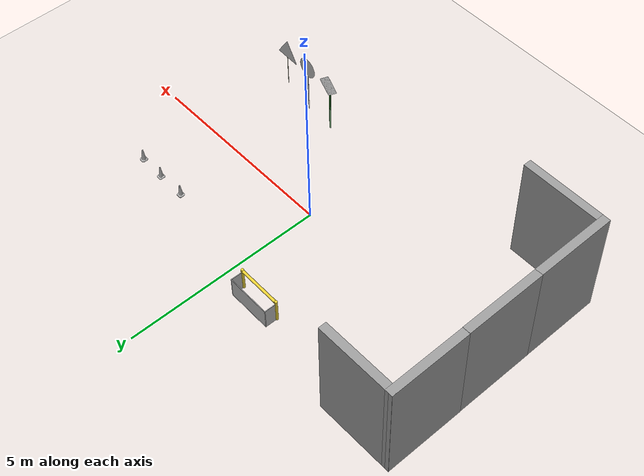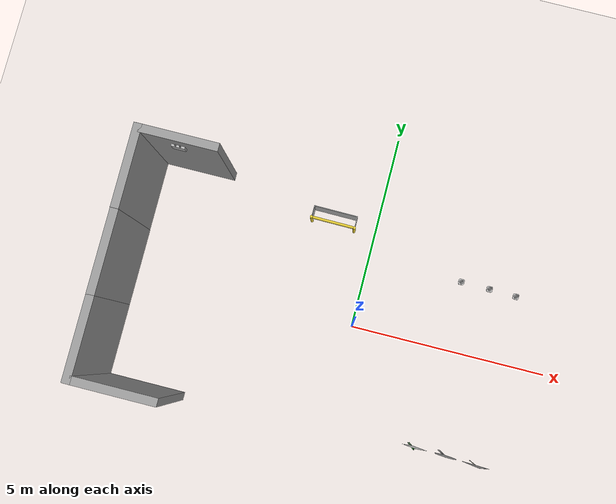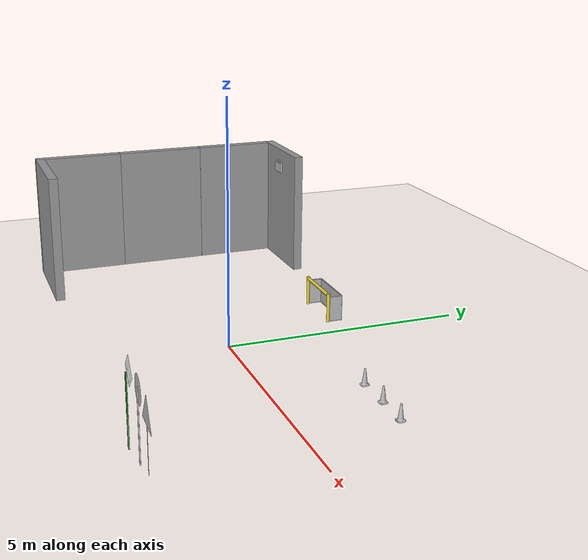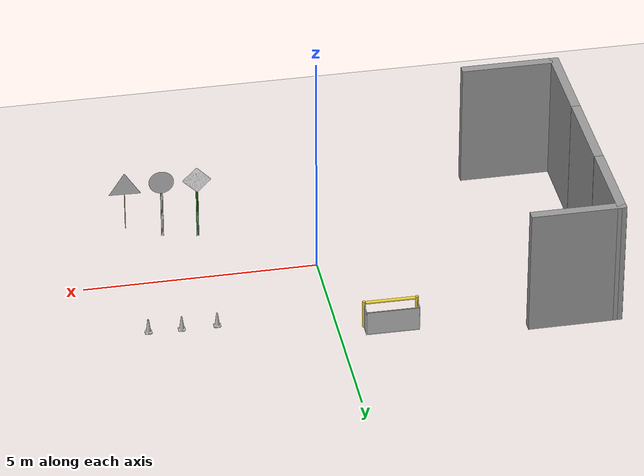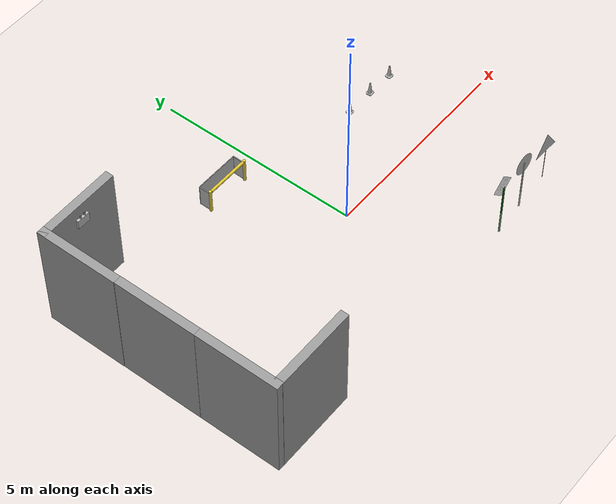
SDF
<sdf version="1.7">
 <world name="world">
  <model name="ground_plane">
   <static>1</static>
   <link name="link">
    <collision name="collision">
     <geometry><plane><normal>0 0 1</normal><size>100 100</size></plane></geometry>
     <surface><friction><ode><mu>100</mu><mu2>50</mu2></ode></friction></surface>
    </collision>
    <visual name="visual">
     <cast_shadows>0</cast_shadows>
     <geometry><plane><normal>0 0 1</normal><size>100 100</size></plane></geometry>
     <material>
      <script><uri>file://media/materials/scripts/gazebo.material</uri><name>Gazebo/Grey</name></script>
     </material>
    </visual>
   </link>
  </model>
  <light name="sun" type="directional">
   <pose>0 0 10 0 -0 0</pose>
   <diffuse>0.8 0.8 0.8 1</diffuse>
   <specular>0.2 0.2 0.2 1</specular>
   <attenuation>
    <range>1000</range>
    <constant>0.9</constant>
    <linear>0.01</linear>
    <quadratic>0.001</quadratic>
   </attenuation>
   <direction>-0.5 0.1 -0.9</direction>
   <spot><inner_angle>0</inner_angle><outer_angle>0</outer_angle><falloff>0</falloff></spot>
  </light>
  <gravity>0 0 -9.8</gravity>
  <magnetic_field>6e-06 2.3e-05 -4.2e-05</magnetic_field>
  <atmosphere type="adiabatic"/>
  <physics type="ode">
   <max_step_size>0.001</max_step_size>
   <real_time_factor>1</real_time_factor>
   <real_time_update_rate>1000</real_time_update_rate>
  </physics>
  <scene><ambient>0.4 0.4 0.4 1</ambient><background>0.7 0.7 0.7 1</background><shadows>1</shadows></scene>
  <spherical_coordinates>
   <surface_model>EARTH_WGS84</surface_model>
   <latitude_deg>0</latitude_deg>
   <longitude_deg>0</longitude_deg>
   <elevation>0</elevation>
   <heading_deg>0</heading_deg>
  </spherical_coordinates>
  <model name="RoboCup 2014 SPL Goal_1">
   <static>1</static>
   <link name="left_post">
    <pose>0 0.56 0.315 0 -0 0</pose>
    <collision name="collision">
     <geometry><cylinder><radius>0.035</radius><length>0.63</length></cylinder></geometry>
    </collision>
    <visual name="visual">
     <geometry><cylinder><radius>0.035</radius><length>0.63</length></cylinder></geometry>
     <material>
      <script><uri>file://media/materials/scripts/gazebo.material</uri><name>Gazebo/ZincYellow</name></script>
     </material>
    </visual>
   </link>
   <link name="left_support_horiz_lower">
    <pose>0.168 0.56 0.007 0 -0 0</pose>
    <collision name="collision"><geometry><box><size>0.266 0.014 0.014</size></box></geometry></collision>
    <visual name="visual">
     <geometry><box><size>0.266 0.014 0.014</size></box></geometry>
     <material>
      <script><uri>file://media/materials/scripts/gazebo.material</uri><name>Gazebo/White</name></script>
     </material>
    </visual>
   </link>
   <link name="left_support_horiz_upper">
    <pose>0.168 0.56 0.553 0 -0 0</pose>
    <collision name="collision"><geometry><box><size>0.266 0.014 0.014</size></box></geometry></collision>
    <visual name="visual">
     <geometry><box><size>0.266 0.014 0.014</size></box></geometry>
     <material>
      <script><uri>file://media/materials/scripts/gazebo.material</uri><name>Gazebo/White</name></script>
     </material>
    </visual>
   </link>
   <link name="left_support_vertical">
    <pose>0.308 0.56 0.28 3.14159 1.57079 3.14159</pose>
    <collision name="collision"><geometry><box><size>0.56 0.014 0.014</size></box></geometry></collision>
    <visual name="visual">
     <geometry><box><size>0.56 0.014 0.014</size></box></geometry>
     <material>
      <script><uri>file://media/materials/scripts/gazebo.material</uri><name>Gazebo/White</name></script>
     </material>
    </visual>
   </link>
   <link name="right_support_horiz_lower">
    <pose>0.168 -0.56 0.007 0 -0 0</pose>
    <collision name="collision"><geometry><box><size>0.266 0.014 0.014</size></box></geometry></collision>
    <visual name="visual">
     <geometry><box><size>0.266 0.014 0.014</size></box></geometry>
     <material>
      <script><uri>file://media/materials/scripts/gazebo.material</uri><name>Gazebo/White</name></script>
     </material>
    </visual>
   </link>
   <link name="right_support_horiz_upper">
    <pose>0.168 -0.56 0.553 0 -0 0</pose>
    <collision name="collision"><geometry><box><size>0.266 0.014 0.014</size></box></geometry></collision>
    <visual name="visual">
     <geometry><box><size>0.266 0.014 0.014</size></box></geometry>
     <material>
      <script><uri>file://media/materials/scripts/gazebo.material</uri><name>Gazebo/White</name></script>
     </material>
    </visual>
   </link>
   <link name="right_support_vertical">
    <pose>0.308 -0.56 0.28 3.14159 1.57079 3.14159</pose>
    <collision name="collision"><geometry><box><size>0.56 0.014 0.014</size></box></geometry></collision>
    <visual name="visual">
     <geometry><box><size>0.56 0.014 0.014</size></box></geometry>
     <material>
      <script><uri>file://media/materials/scripts/gazebo.material</uri><name>Gazebo/White</name></script>
     </material>
    </visual>
   </link>
   <link name="center_support_horiz_lower">
    <pose>0.308 0 0.007 3.14159 1.57079 3.14159</pose>
    <collision name="collision"><geometry><box><size>0.014 1.106 0.014</size></box></geometry></collision>
    <visual name="visual">
     <geometry><box><size>0.014 1.106 0.014</size></box></geometry>
     <material>
      <script><uri>file://media/materials/scripts/gazebo.material</uri><name>Gazebo/White</name></script>
     </material>
    </visual>
   </link>
   <link name="center_support_horiz_upper">
    <pose>0.308 0 0.553 3.14159 1.57079 3.14159</pose>
    <collision name="collision"><geometry><box><size>0.014 1.106 0.014</size></box></geometry></collision>
    <visual name="visual">
     <geometry><box><size>0.014 1.106 0.014</size></box></geometry>
     <material>
      <script><uri>file://media/materials/scripts/gazebo.material</uri><name>Gazebo/White</name></script>
     </material>
    </visual>
   </link>
   <link name="right_post">
    <pose>0 -0.56 0.315 0 -0 0</pose>
    <collision name="collision">
     <geometry><cylinder><radius>0.035</radius><length>0.63</length></cylinder></geometry>
    </collision>
    <visual name="visual">
     <geometry><cylinder><radius>0.035</radius><length>0.63</length></cylinder></geometry>
     <material>
      <script><uri>file://media/materials/scripts/gazebo.material</uri><name>Gazebo/ZincYellow</name></script>
     </material>
    </visual>
   </link>
   <link name="crossbar">
    <pose>0 0 0.595 1.57 1.57 0</pose>
    <collision name="collision">
     <geometry><cylinder><radius>0.035</radius><length>1.05</length></cylinder></geometry>
    </collision>
    <visual name="visual">
     <geometry><cylinder><radius>0.035</radius><length>1.05</length></cylinder></geometry>
     <material>
      <script><uri>file://media/materials/scripts/gazebo.material</uri><name>Gazebo/ZincYellow</name></script>
     </material>
    </visual>
   </link>
   <link name="center_net">
    <pose>0.308 0 0.28 0 -0 0</pose>
    <collision name="collision"><geometry><box><size>0.007 1.12 0.56</size></box></geometry></collision>
    <visual name="visual">
     <geometry><box><size>0.007 1.12 0.56</size></box></geometry>
     <material>
      <script>
       <uri>model://robocup09_spl_field/materials/scripts/</uri>
       <uri>model://robocup09_spl_field/materials/textures/</uri>
       <name>RoboCup/Net</name>
      </script>
     </material>
    </visual>
   </link>
   <link name="left_net">
    <pose>0.168 0.56 0.28 0 -0 0</pose>
    <collision name="collision"><geometry><box><size>0.266 0.007 0.532</size></box></geometry></collision>
    <visual name="visual">
     <geometry><box><size>0.266 0.007 0.532</size></box></geometry>
     <material>
      <script>
       <uri>model://robocup09_spl_field/materials/scripts/</uri>
       <uri>model://robocup09_spl_field/materials/textures/</uri>
       <name>RoboCup/Net</name>
      </script>
     </material>
    </visual>
   </link>
   <link name="right_net">
    <pose>0.168 -0.56 0.28 0 -0 0</pose>
    <collision name="collision"><geometry><box><size>0.266 0.007 0.532</size></box></geometry></collision>
    <visual name="visual">
     <geometry><box><size>0.266 0.007 0.532</size></box></geometry>
     <material>
      <script>
       <uri>model://robocup09_spl_field/materials/scripts/</uri>
       <uri>model://robocup09_spl_field/materials/textures/</uri>
       <name>RoboCup/Net</name>
      </script>
     </material>
    </visual>
   </link>
   <pose>-1.11191 2.39479 0 0 -0 1.56109</pose>
  </model>
  <model name="grey_wall_short">
   <link name="link">
    <pose>0 0 1.4 0 -0 0</pose>
    <inertial>
     <mass>1</mass>
     <inertia><ixx>1</ixx><ixy>0</ixy><ixz>0</ixz><iyy>1</iyy><iyz>0</iyz><izz>1</izz></inertia>
    </inertial>
    <visual name="visual">
     <cast_shadows>0</cast_shadows>
     <geometry><box><size>2 0.2 2.8</size></box></geometry>
     <material>
      <script>
       <uri>model://grey_wall/materials/scripts</uri>
       <uri>model://grey_wall/materials/textures</uri>
       <name>vrc/grey_wall</name>
      </script>
      <shader type="pixel"><normal_map>__default__</normal_map></shader>
      <ambient>1 1 1 1</ambient>
      <diffuse>1 1 1 1</diffuse>
      <specular>0 0 0 1</specular>
      <emissive>0 0 0 1</emissive>
     </material>
    </visual>
    <collision name="collision">
     <geometry><box><size>7.5 0.2 2.8</size></box></geometry>
     <surface>
      <friction>
       <ode><mu>1</mu><mu2>1</mu2><fdir1>0 0 0</fdir1><slip1>0</slip1><slip2>0</slip2></ode>
       <torsional>
        <coefficient>1</coefficient>
        <patch_radius>0</patch_radius>
        <surface_radius>0</surface_radius>
        <use_patch_radius>1</use_patch_radius>
        <ode><slip>0</slip></ode>
       </torsional>
      </friction>
      <bounce><restitution_coefficient>0</restitution_coefficient><threshold>1e+06</threshold></bounce>
      <contact>
       <collide_without_contact>0</collide_without_contact>
       <collide_without_contact_bitmask>1</collide_without_contact_bitmask>
       <collide_bitmask>1</collide_bitmask>
       <ode>
        <soft_cfm>0</soft_cfm>
        <soft_erp>0.2</soft_erp>
        <kp>1e+13</kp>
        <kd>1</kd>
        <max_vel>0.01</max_vel>
        <min_depth>0</min_depth>
       </ode>
       <bullet>
        <split_impulse>1</split_impulse>
        <split_impulse_penetration_threshold>-0.01</split_impulse_penetration_threshold>
        <soft_cfm>0</soft_cfm>
        <soft_erp>0.2</soft_erp>
        <kp>1e+13</kp>
        <kd>1</kd>
       </bullet>
      </contact>
     </surface>
    </collision>
   </link>
   <static>1</static>
   <pose>-4.70394 -2.75562 0 0 -0 0</pose>
  </model>
  <model name="triangle_sign">
   <static>1</static>
   <link name="triangle_sign_link">
    <visual name="triangle_sign_visual">
     <geometry><mesh><scale>0.7 0.7 0.7</scale><uri>model://triangle_sign/meshes/model.dae</uri></mesh></geometry>
     <material>
      <script>
       <uri>model://triangle_sign/materials/scripts</uri>
       <uri>model://triangle_sign/materials/textures</uri>
       <name>triangle_sign</name>
      </script>
     </material>
    </visual>
    <collision name="triangle_sign_collision">
     <geometry><mesh><scale>0.7 0.7 0.7</scale><uri>model://triangle_sign/meshes/model.dae</uri></mesh></geometry>
    </collision>
   </link>
   <pose>3.7357 -2.55821 -0.256332 0 0 -0.039524</pose>
  </model>
  <model name="circle_sign">
   <static>1</static>
   <link name="link">
    <collision name="collision">
     <geometry><mesh><scale>7 7 7</scale><uri>model://circle_sign/meshes/model.dae</uri></mesh></geometry>
    </collision>
    <visual name="visual">
     <geometry><mesh><scale>7 7 7</scale><uri>model://circle_sign/meshes/model.dae</uri></mesh></geometry>
    </visual>
   </link>
   <pose>2.93565 -2.49251 -0.527311 0 0 -0.037379</pose>
  </model>
  <model name="diamond_sign">
   <static>1</static>
   <link name="diamond_sign_link">
    <visual name="diamond_sign_visual">
     <geometry><mesh><scale>0.6 0.6 0.6</scale><uri>model://diamond_sign/meshes/model.dae</uri></mesh></geometry>
     <material>
      <script>
       <uri>model://diamond_sign/materials/scripts</uri>
       <uri>model://diamond_sign/materials/textures</uri>
       <name>diamond_sign</name>
      </script>
     </material>
    </visual>
    <collision name="diamond_sign_collision">
     <geometry><mesh><scale>0.6 0.6 0.6</scale><uri>model://diamond_sign/meshes/model.dae</uri></mesh></geometry>
    </collision>
   </link>
   <pose>2.1318 -2.52591 -0.643976 0 -0 3.10996</pose>
  </model>
  <model name="blue Cone">
   <link name="link">
    <collision name="collision">
     <geometry><mesh><scale>3 3 3</scale><uri>model://blue_cone/meshes/model.dae</uri></mesh></geometry>
    </collision>
    <visual name="visual">
     <geometry><mesh><scale>3 3 3</scale><uri>model://blue_cone/meshes/model.dae</uri></mesh></geometry>
    </visual>
    <inertial>
     <inertia><ixx>1</ixx><ixy>0</ixy><ixz>0</ixz><iyy>1</iyy><iyz>0</iyz><izz>1</izz></inertia>
     <mass>1</mass>
    </inertial>
   </link>
   <pose>3.19052 1.79785 -0 0 3e-06 -0.000311</pose>
  </model>
  <model name="red Cone">
   <link name="link">
    <collision name="collision">
     <geometry><mesh><scale>3 3 3</scale><uri>model://red_cone/meshes/model.dae</uri></mesh></geometry>
    </collision>
    <visual name="visual">
     <geometry><mesh><scale>3 3 3</scale><uri>model://red_cone/meshes/model.dae</uri></mesh></geometry>
    </visual>
    <inertial>
     <inertia><ixx>1</ixx><ixy>0</ixy><ixz>0</ixz><iyy>1</iyy><iyz>0</iyz><izz>1</izz></inertia>
     <mass>1</mass>
    </inertial>
   </link>
   <pose>3.88805 1.7749 0 -0 3e-06 0.000657</pose>
  </model>
  <model name="green Cone">
   <link name="link">
    <collision name="collision">
     <geometry><mesh><scale>3 3 3</scale><uri>model://green_cone/meshes/model.dae</uri></mesh></geometry>
    </collision>
    <visual name="visual">
     <geometry><mesh><scale>3 3 3</scale><uri>model://green_cone/meshes/model.dae</uri></mesh></geometry>
    </visual>
    <inertial>
     <inertia><ixx>1</ixx><ixy>0</ixy><ixz>0</ixz><iyy>1</iyy><iyz>0</iyz><izz>1</izz></inertia>
     <mass>1</mass>
    </inertial>
   </link>
   <pose>2.44442 1.80101 -9e-06 3e-06 -0 0</pose>
  </model>
  <model name="grey_wall_short_clone">
   <link name="link">
    <pose>0 0 1.4 0 -0 0</pose>
    <inertial>
     <mass>1</mass>
     <inertia><ixx>1</ixx><ixy>0</ixy><ixz>0</ixz><iyy>1</iyy><iyz>0</iyz><izz>1</izz></inertia>
    </inertial>
    <visual name="visual">
     <cast_shadows>0</cast_shadows>
     <geometry><box><size>2 0.2 2.8</size></box></geometry>
     <material>
      <script>
       <uri>model://grey_wall/materials/scripts</uri>
       <uri>model://grey_wall/materials/textures</uri>
       <name>vrc/grey_wall</name>
      </script>
      <shader type="pixel"><normal_map>__default__</normal_map></shader>
      <ambient>1 1 1 1</ambient>
      <diffuse>1 1 1 1</diffuse>
      <specular>0 0 0 1</specular>
      <emissive>0 0 0 1</emissive>
     </material>
    </visual>
    <collision name="collision">
     <geometry><box><size>7.5 0.2 2.8</size></box></geometry>
     <surface>
      <friction>
       <ode><mu>1</mu><mu2>1</mu2><fdir1>0 0 0</fdir1><slip1>0</slip1><slip2>0</slip2></ode>
       <torsional>
        <coefficient>1</coefficient>
        <patch_radius>0</patch_radius>
        <surface_radius>0</surface_radius>
        <use_patch_radius>1</use_patch_radius>
        <ode><slip>0</slip></ode>
       </torsional>
      </friction>
      <bounce><restitution_coefficient>0</restitution_coefficient><threshold>1e+06</threshold></bounce>
      <contact>
       <collide_without_contact>0</collide_without_contact>
       <collide_without_contact_bitmask>1</collide_without_contact_bitmask>
       <collide_bitmask>1</collide_bitmask>
       <ode>
        <soft_cfm>0</soft_cfm>
        <soft_erp>0.2</soft_erp>
        <kp>1e+13</kp>
        <kd>1</kd>
        <max_vel>0.01</max_vel>
        <min_depth>0</min_depth>
       </ode>
       <bullet>
        <split_impulse>1</split_impulse>
        <split_impulse_penetration_threshold>-0.01</split_impulse_penetration_threshold>
        <soft_cfm>0</soft_cfm>
        <soft_erp>0.2</soft_erp>
        <kp>1e+13</kp>
        <kd>1</kd>
       </bullet>
      </contact>
     </surface>
    </collision>
   </link>
   <static>1</static>
   <pose>-5.7661 -1.85322 0 0 -0 1.57578</pose>
  </model>
  <model name="grey_wall_short_clone_clone">
   <link name="link">
    <pose>0 0 1.4 0 -0 0</pose>
    <inertial>
     <mass>1</mass>
     <inertia><ixx>1</ixx><ixy>0</ixy><ixz>0</ixz><iyy>1</iyy><iyz>0</iyz><izz>1</izz></inertia>
    </inertial>
    <visual name="visual">
     <cast_shadows>0</cast_shadows>
     <geometry><box><size>2 0.2 2.8</size></box></geometry>
     <material>
      <script>
       <uri>model://grey_wall/materials/scripts</uri>
       <uri>model://grey_wall/materials/textures</uri>
       <name>vrc/grey_wall</name>
      </script>
      <shader type="pixel"><normal_map>__default__</normal_map></shader>
      <ambient>1 1 1 1</ambient>
      <diffuse>1 1 1 1</diffuse>
      <specular>0 0 0 1</specular>
      <emissive>0 0 0 1</emissive>
     </material>
    </visual>
    <collision name="collision">
     <geometry><box><size>7.5 0.2 2.8</size></box></geometry>
     <surface>
      <friction>
       <ode><mu>1</mu><mu2>1</mu2><fdir1>0 0 0</fdir1><slip1>0</slip1><slip2>0</slip2></ode>
       <torsional>
        <coefficient>1</coefficient>
        <patch_radius>0</patch_radius>
        <surface_radius>0</surface_radius>
        <use_patch_radius>1</use_patch_radius>
        <ode><slip>0</slip></ode>
       </torsional>
      </friction>
      <bounce><restitution_coefficient>0</restitution_coefficient><threshold>1e+06</threshold></bounce>
      <contact>
       <collide_without_contact>0</collide_without_contact>
       <collide_without_contact_bitmask>1</collide_without_contact_bitmask>
       <collide_bitmask>1</collide_bitmask>
       <ode>
        <soft_cfm>0</soft_cfm>
        <soft_erp>0.2</soft_erp>
        <kp>1e+13</kp>
        <kd>1</kd>
        <max_vel>0.01</max_vel>
        <min_depth>0</min_depth>
       </ode>
       <bullet>
        <split_impulse>1</split_impulse>
        <split_impulse_penetration_threshold>-0.01</split_impulse_penetration_threshold>
        <soft_cfm>0</soft_cfm>
        <soft_erp>0.2</soft_erp>
        <kp>1e+13</kp>
        <kd>1</kd>
       </bullet>
      </contact>
     </surface>
    </collision>
   </link>
   <static>1</static>
   <pose>-5.77807 0.139178 0 0 -0 1.57578</pose>
  </model>
  <model name="grey_wall_short_clone_clone_0">
   <link name="link">
    <pose>0 0 1.4 0 -0 0</pose>
    <inertial>
     <mass>1</mass>
     <inertia><ixx>1</ixx><ixy>0</ixy><ixz>0</ixz><iyy>1</iyy><iyz>0</iyz><izz>1</izz></inertia>
    </inertial>
    <visual name="visual">
     <cast_shadows>0</cast_shadows>
     <geometry><box><size>2 0.2 2.8</size></box></geometry>
     <material>
      <script>
       <uri>model://grey_wall/materials/scripts</uri>
       <uri>model://grey_wall/materials/textures</uri>
       <name>vrc/grey_wall</name>
      </script>
      <shader type="pixel"><normal_map>__default__</normal_map></shader>
      <ambient>1 1 1 1</ambient>
      <diffuse>1 1 1 1</diffuse>
      <specular>0 0 0 1</specular>
      <emissive>0 0 0 1</emissive>
     </material>
    </visual>
    <collision name="collision">
     <geometry><box><size>7.5 0.2 2.8</size></box></geometry>
     <surface>
      <friction>
       <ode><mu>1</mu><mu2>1</mu2><fdir1>0 0 0</fdir1><slip1>0</slip1><slip2>0</slip2></ode>
       <torsional>
        <coefficient>1</coefficient>
        <patch_radius>0</patch_radius>
        <surface_radius>0</surface_radius>
        <use_patch_radius>1</use_patch_radius>
        <ode><slip>0</slip></ode>
       </torsional>
      </friction>
      <bounce><restitution_coefficient>0</restitution_coefficient><threshold>1e+06</threshold></bounce>
      <contact>
       <collide_without_contact>0</collide_without_contact>
       <collide_without_contact_bitmask>1</collide_without_contact_bitmask>
       <collide_bitmask>1</collide_bitmask>
       <ode>
        <soft_cfm>0</soft_cfm>
        <soft_erp>0.2</soft_erp>
        <kp>1e+13</kp>
        <kd>1</kd>
        <max_vel>0.01</max_vel>
        <min_depth>0</min_depth>
       </ode>
       <bullet>
        <split_impulse>1</split_impulse>
        <split_impulse_penetration_threshold>-0.01</split_impulse_penetration_threshold>
        <soft_cfm>0</soft_cfm>
        <soft_erp>0.2</soft_erp>
        <kp>1e+13</kp>
        <kd>1</kd>
       </bullet>
      </contact>
     </surface>
    </collision>
   </link>
   <static>1</static>
   <pose>-5.79304 2.14106 0 0 -0 1.57578</pose>
  </model>
  <model name="grey_wall_short_0">
   <link name="link">
    <pose>0 0 1.4 0 -0 0</pose>
    <inertial>
     <mass>1</mass>
     <inertia><ixx>1</ixx><ixy>0</ixy><ixz>0</ixz><iyy>1</iyy><iyz>0</iyz><izz>1</izz></inertia>
    </inertial>
    <visual name="visual">
     <cast_shadows>0</cast_shadows>
     <geometry><box><size>2 0.2 2.8</size></box></geometry>
     <material>
      <script>
       <uri>model://grey_wall/materials/scripts</uri>
       <uri>model://grey_wall/materials/textures</uri>
       <name>vrc/grey_wall</name>
      </script>
      <shader type="pixel"><normal_map>__default__</normal_map></shader>
      <ambient>1 1 1 1</ambient>
      <diffuse>1 1 1 1</diffuse>
      <specular>0 0 0 1</specular>
      <emissive>0 0 0 1</emissive>
     </material>
    </visual>
    <collision name="collision">
     <geometry><box><size>7.5 0.2 2.8</size></box></geometry>
     <surface>
      <friction>
       <ode><mu>1</mu><mu2>1</mu2><fdir1>0 0 0</fdir1><slip1>0</slip1><slip2>0</slip2></ode>
       <torsional>
        <coefficient>1</coefficient>
        <patch_radius>0</patch_radius>
        <surface_radius>0</surface_radius>
        <use_patch_radius>1</use_patch_radius>
        <ode><slip>0</slip></ode>
       </torsional>
      </friction>
      <bounce><restitution_coefficient>0</restitution_coefficient><threshold>1e+06</threshold></bounce>
      <contact>
       <collide_without_contact>0</collide_without_contact>
       <collide_without_contact_bitmask>1</collide_without_contact_bitmask>
       <collide_bitmask>1</collide_bitmask>
       <ode>
        <soft_cfm>0</soft_cfm>
        <soft_erp>0.2</soft_erp>
        <kp>1e+13</kp>
        <kd>1</kd>
        <max_vel>0.01</max_vel>
        <min_depth>0</min_depth>
       </ode>
       <bullet>
        <split_impulse>1</split_impulse>
        <split_impulse_penetration_threshold>-0.01</split_impulse_penetration_threshold>
        <soft_cfm>0</soft_cfm>
        <soft_erp>0.2</soft_erp>
        <kp>1e+13</kp>
        <kd>1</kd>
       </bullet>
      </contact>
     </surface>
    </collision>
   </link>
   <static>1</static>
   <pose>-4.89281 3.04108 0 0 -0 0</pose>
  </model>
  <model name="Exit sign">
   <static>1</static>
   <link name="link">
    <collision name="collision">
     <geometry><mesh><uri>model://Exit sign/meshes/Exit sign.dae</uri></mesh></geometry>
    </collision>
    <visual name="visual">
     <geometry><mesh><uri>model://Exit sign/meshes/Exit sign.dae</uri></mesh></geometry>
    </visual>
   </link>
   <pose>-4.87243 2.93421 2.36797 0 -0 0</pose>
  </model>
 </world>
</sdf>
